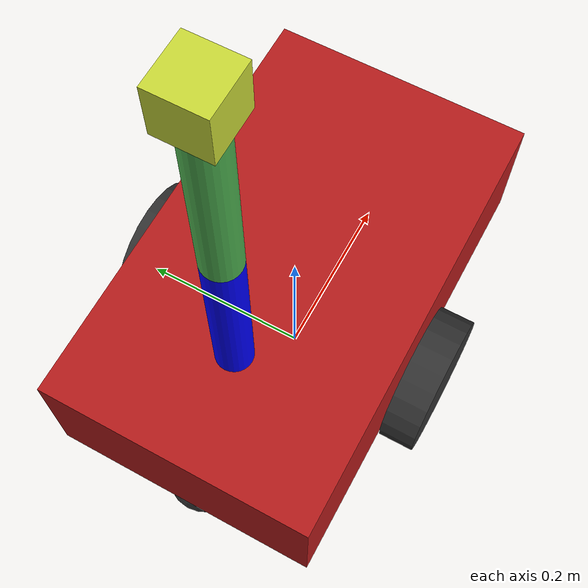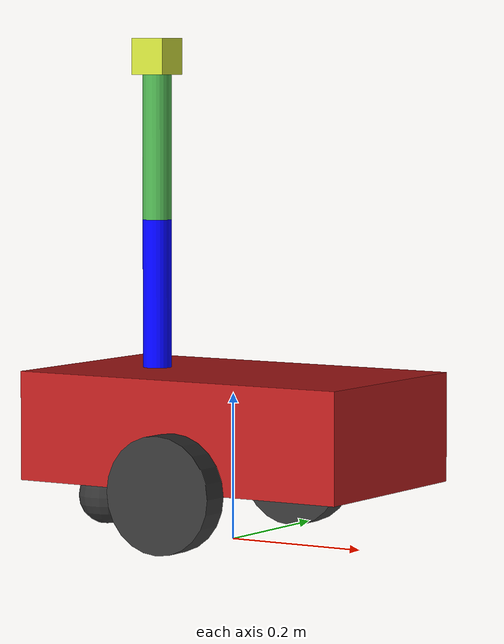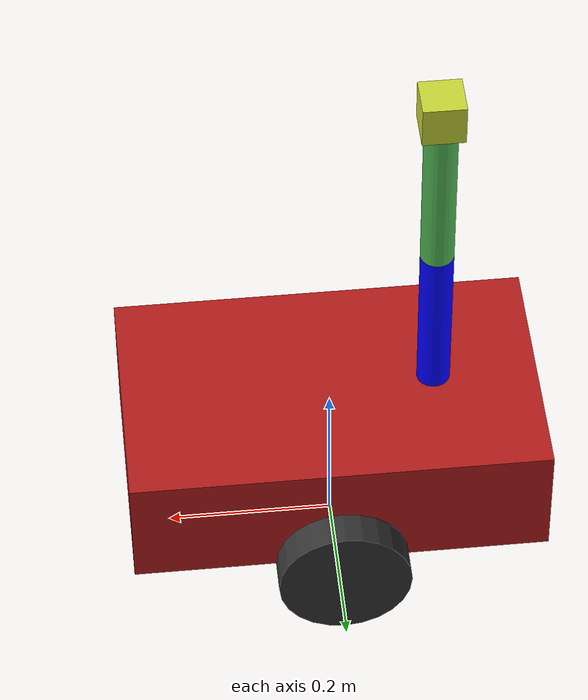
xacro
<?xml version="1.0"?>
<robot name="warehouse_robot" xmlns:xacro="http://www.ros.org/wiki/xacro">

  <xacro:include filename="$(find warehouse_robot_description)/urdf/common_properties.xacro"/>
  <xacro:include filename="$(find warehouse_robot_description)/urdf/mobile_base.xacro"/>
  <xacro:include filename="$(find warehouse_robot_description)/urdf/arm.xacro"/>

  <joint name="arm_base_joint" type="fixed">
    <parent link="base_link"/>
    <child link="arm_base_link"/>
    <origin xyz="${-base_length/4} 0 ${base_height/2 + arm_base_height/2}" rpy="0 0 0"/>
  </joint>

</robot>

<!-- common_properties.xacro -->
<robot xmlns:xacro="http://www.ros.org/wiki/xacro">

  <xacro:macro name="inertial_box" params="mass x y z">
    <inertial>
      <origin xyz="0 0 0" rpy="0 0 0"/>
      <mass value="${mass}"/>
      <inertia ixx="${(1/12)*mass*(y*y+z*z)}" ixy="0.0" ixz="0.0"
               iyy="${(1/12)*mass*(x*x+z*z)}" iyz="0.0"
               izz="${(1/12)*mass*(x*x+y*y)}"/>
    </inertial>
  </xacro:macro>

  <xacro:macro name="inertial_cylinder" params="mass radius length">
    <inertial>
      <origin xyz="0 0 0" rpy="0 0 0"/>
      <mass value="${mass}"/>
      <inertia ixx="${(1/12)*mass*(3*radius*radius+length*length)}" ixy="0.0" ixz="0.0"
               iyy="${(1/12)*mass*(3*radius*radius+length*length)}" iyz="0.0"
               izz="${(1/2)*mass*(radius*radius)}"/>
    </inertial>
  </xacro:macro>

  <xacro:macro name="inertial_sphere" params="mass radius">
    <inertial>
      <origin xyz="0 0 0" rpy="0 0 0"/>
      <mass value="${mass}"/>
      <inertia ixx="${(2/5)*mass*(radius*radius)}" ixy="0.0" ixz="0.0"
               iyy="${(2/5)*mass*(radius*radius)}" iyz="0.0"
               izz="${(2/5)*mass*(radius*radius)}"/>
    </inertial>
  </xacro:macro>

</robot>

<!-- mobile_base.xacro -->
<robot xmlns:xacro="http://www.ros.org/wiki/xacro">

  <!-- PROPERTIES -->
  <xacro:property name="base_length" value="0.5"/>
  <xacro:property name="base_width" value="0.3"/>
  <xacro:property name="base_height" value="0.15"/>
  <xacro:property name="wheel_radius" value="0.08"/>
  <xacro:property name="wheel_length" value="0.04"/>
  <xacro:property name="caster_wheel_radius" value="0.04"/>

  <!-- BASE FOOTPRINT -->
  <link name="base_footprint"/>

  <joint name="base_joint" type="fixed">
    <parent link="base_footprint"/>
    <child link="base_link"/>
    <origin xyz="0 0 ${wheel_radius}" rpy="0 0 0"/>
  </joint>

  <!-- BASE LINK -->
  <link name="base_link">
    <visual>
      <geometry>
        <box size="${base_length} ${base_width} ${base_height}"/>
      </geometry>
      <origin xyz="0 0 ${base_height/2}" rpy="0 0 0"/>
      <material name="Red">
        <color rgba="0.72 0.11 0.11 1"/>
      </material>
    </visual>
    <collision>
      <geometry>
        <box size="${base_length} ${base_width} ${base_height}"/>
      </geometry>
      <origin xyz="0 0 ${base_height/2}" rpy="0 0 0"/>
    </collision>
    <xacro:inertial_box mass="1.0" x="${base_length}" y="${base_width}" z="${base_height}"/>
  </link>

  <gazebo reference="base_link">
    <material>Gazebo/Red</material>
  </gazebo>

  <!-- SOL TEKERLEK -->
  <link name="left_wheel_link">
    <visual>
      <geometry>
        <cylinder radius="${wheel_radius}" length="${wheel_length}"/>
      </geometry>
      <material name="dark_grey">
        <color rgba="0.2 0.2 0.2 1"/>
      </material>
    </visual>
    <collision>
      <geometry>
        <cylinder radius="${wheel_radius}" length="${wheel_length}"/>
      </geometry>
    </collision>
    <xacro:inertial_cylinder mass="0.2" radius="${wheel_radius}" length="${wheel_length}"/>
  </link>

   <gazebo reference="left_wheel_link">
    <material>Gazebo/DarkGrey</material>
  </gazebo>

  <joint name="left_wheel_joint" type="continuous">
    <parent link="base_link"/>
    <child link="left_wheel_link"/>
    <origin xyz="0 ${(base_width+wheel_length)/2} 0" rpy="${-pi/2} 0 0"/>
    <axis xyz="0 0 1"/>
  </joint>

  <!-- SAĞ TEKERLEK -->
  <link name="right_wheel_link">
    <visual>
      <geometry>
        <cylinder radius="${wheel_radius}" length="${wheel_length}"/>
      </geometry>
      <material name="dark_grey">
        <color rgba="0.2 0.2 0.2 1"/>
      </material>
    </visual>
    <collision>
      <geometry>
        <cylinder radius="${wheel_radius}" length="${wheel_length}"/>
      </geometry>
    </collision>
    <xacro:inertial_cylinder mass="0.2" radius="${wheel_radius}" length="${wheel_length}"/>
  </link>

   <gazebo reference="right_wheel_link">
    <material>Gazebo/DarkGrey</material>
  </gazebo>

  <joint name="right_wheel_joint" type="continuous">
    <parent link="base_link"/>
    <child link="right_wheel_link"/>
    <origin xyz="0 ${-(base_width+wheel_length)/2} 0" rpy="${-pi/2} 0 0"/>
    <axis xyz="0 0 1"/>
  </joint>

  <!-- CASTER WHEEL -->
  <link name="caster_wheel_link">
    <visual>
      <geometry>
        <sphere radius="${caster_wheel_radius}"/>
      </geometry>
      <material name="dark_grey">
        <color rgba="0.2 0.2 0.2 1"/>
      </material>
    </visual>
    <collision>
      <geometry>
        <sphere radius="${caster_wheel_radius}"/>
      </geometry>
    </collision>
    <xacro:inertial_sphere mass="0.1" radius="${caster_wheel_radius}"/>
  </link>

  <gazebo reference="caster_wheel_link">
    <material>Gazebo/DarkGrey</material>
    <mu1 value="0.1"/>
    <mu2 value="0.1"/>
  </gazebo>

  <joint name="caster_wheel_joint" type="fixed">
    <parent link="base_link"/>
    <child link="caster_wheel_link"/>
    <origin xyz="${-base_length/2+caster_wheel_radius} 0 ${-(base_height/2-caster_wheel_radius)}" rpy="0 0 0"/>
  </joint>

  <gazebo>
    <plugin filename="gz-sim-diff-drive-system"
            name="gz::sim::systems::DiffDrive">
      <left_joint>left_wheel_joint</left_joint>
      <right_joint>right_wheel_joint</right_joint>
      <wheel_separation>${base_width+wheel_length}</wheel_separation>
      <wheel_radius>${wheel_radius}</wheel_radius>
      <odom_publish_frequency>10</odom_publish_frequency>
      <frame_id>odom</frame_id>
      <child_frame_id>base_footprint</child_frame_id>
    </plugin>
  </gazebo>

  <!-- JOINT STATE PUBLISHER (tekerlekler) -->
  <gazebo>
    <plugin filename="gz-sim-joint-state-publisher-system"
            name="gz::sim::systems::JointStatePublisher">
      <joint_name>left_wheel_joint</joint_name>
      <joint_name>right_wheel_joint</joint_name>
    </plugin>
  </gazebo>

  </robot>

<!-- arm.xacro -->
<robot xmlns:xacro="http://www.ros.org/wiki/xacro">

<xacro:include filename="common_properties.xacro"/>

  <!-- PROPERTIES -->
  <xacro:property name="arm_base_length" value="0.08"/>
  <xacro:property name="arm_base_width" value="0.08"/>
  <xacro:property name="arm_base_height" value="0.02"/>
  <xacro:property name="lower_arm_radius" value="0.02"/>
  <xacro:property name="lower_arm_length" value="0.25"/>
  <xacro:property name="upper_arm_radius" value="0.02"/>
  <xacro:property name="upper_arm_length" value="0.20"/>
  <xacro:property name="gripper_length" value="0.05"/>
  <xacro:property name="gripper_width" value="0.05"/>
  <xacro:property name="gripper_height" value="0.05"/>

  <!-- ARM BASE LINK -->
  <link name="arm_base_link">
    <visual>
      <geometry>
        <box size="${arm_base_length} ${arm_base_width} ${arm_base_height}"/>
      </geometry>
      <origin xyz="0 0 ${arm_base_height/2}" rpy="0 0 0"/>
      <material name="orange">
        <color rgba="1 0.44 0 1"/>
      </material>
    </visual>
    <collision>
      <geometry>
        <box size="${arm_base_length} ${arm_base_width} ${arm_base_height}"/>
      </geometry>
      <origin xyz="0 0 ${arm_base_height/2}" rpy="0 0 0"/>
    </collision>
    <xacro:inertial_box mass="0.5" x="${arm_base_length}" y="${arm_base_width}" z="${arm_base_height}"/>
  </link>

  <gazebo reference="arm_base_link">
    <material>Gazebo/Orange</material>
  </gazebo>

  <!-- LOWER_ARM LINK -->
  <link name="lower_arm_link">
    <visual>
      <geometry>
        <cylinder radius="${lower_arm_radius}" length="${lower_arm_length}"/>
      </geometry>
      <origin xyz="0 0 ${lower_arm_length/2}" rpy="0 0 0"/>
      <material name="blue">
        <color rgba="0 0 1 1"/>
      </material>
    </visual>
    <collision>
      <geometry>
        <cylinder radius="${lower_arm_radius}" length="${lower_arm_length}"/>
      </geometry>
      <origin xyz="0 0 ${lower_arm_length/2}" rpy="0 0 0"/>
    </collision>
    <xacro:inertial_cylinder mass="0.3" radius="${lower_arm_radius}" length="${lower_arm_length}"/>
  </link>

  <gazebo reference="lower_arm_link">
    <material>Gazebo/Blue</material>
  </gazebo>

  <!-- UPPER_ARM LINK -->
  <link name="upper_arm_link">
    <visual>
      <geometry>
        <cylinder radius="${upper_arm_radius}" length="${upper_arm_length}"/>
      </geometry>
      <origin xyz="0 0 ${upper_arm_length/2}" rpy="0 0 0"/>
      <material name="Green">
        <color rgba="0.3 0.69 0.31 1"/>
      </material>
    </visual>
    <collision>
      <geometry>
        <cylinder radius="${upper_arm_radius}" length="${upper_arm_length}"/>
      </geometry>
      <origin xyz="0 0 ${upper_arm_length/2}" rpy="0 0 0"/>
    </collision>
    <xacro:inertial_cylinder mass="0.3" radius="${upper_arm_radius}" length="${upper_arm_length}"/>
  </link>

  <gazebo reference="upper_arm_link">
    <material>Gazebo/Green</material>
  </gazebo>

  <!-- GRIIPER LINK -->
  <link name="gripper_link">
    <visual>
      <geometry>
        <box size="${gripper_length} ${gripper_width} ${gripper_height}"/>
      </geometry>
      <origin xyz="0 0 ${gripper_height/2}" rpy="0 0 0"/>
      <material name="Yellow">
        <color rgba="0.8 0.86 0.22 1"/>
      </material>
    </visual>
    <collision>
      <geometry>
        <box size="${gripper_length} ${gripper_width} ${gripper_height}"/>
      </geometry>
      <origin xyz="0 0 ${gripper_height/2}" rpy="0 0 0"/>
    </collision>
    <xacro:inertial_box mass="0.1" x="${gripper_length}" y="${gripper_width}" z="${gripper_height}"/>
  </link>

  <gazebo reference="gripper_link">
    <material>Gazebo/Yellow</material>
  </gazebo>

  <!-- ARM BASE → LOWERARM -->
  <joint name="arm_base_to_lower_arm" type="revolute">
    <parent link="arm_base_link"/>
    <child link="lower_arm_link"/>
    <origin xyz="0 0 ${arm_base_height}" rpy="0 0 0"/>
    <axis xyz="0 1 0"/>
    <limit lower="0" upper="${pi/2}" effort="100" velocity="100"/>
    <dynamics friction="0.05" damping="0.1"/>
  </joint>

  <!-- LOWERARM → UPPERARM -->
  <joint name="lower_arm_to_upper_arm" type="revolute">
    <parent link="lower_arm_link"/>
    <child link="upper_arm_link"/>
    <origin xyz="0 0 ${lower_arm_length}" rpy="0 0 0"/>
    <axis xyz="0 1 0"/>
    <limit lower="0" upper="${pi/2}" effort="100" velocity="100"/>
    <dynamics friction="0.05" damping="0.1"/>
  </joint>

   <!-- UPPERARM → GRIPPER -->
  <joint name="upper_arm_to_gripper" type="revolute">
    <parent link="upper_arm_link"/>
    <child link="gripper_link"/>
    <origin xyz="0 0 ${upper_arm_length}" rpy="0 0 0"/>
    <axis xyz="0 1 0"/>
    <limit lower="0" upper="${pi/2}" effort="100" velocity="100"/>
    <dynamics friction="0.05" damping="0.1"/>
  </joint>

</robot>
